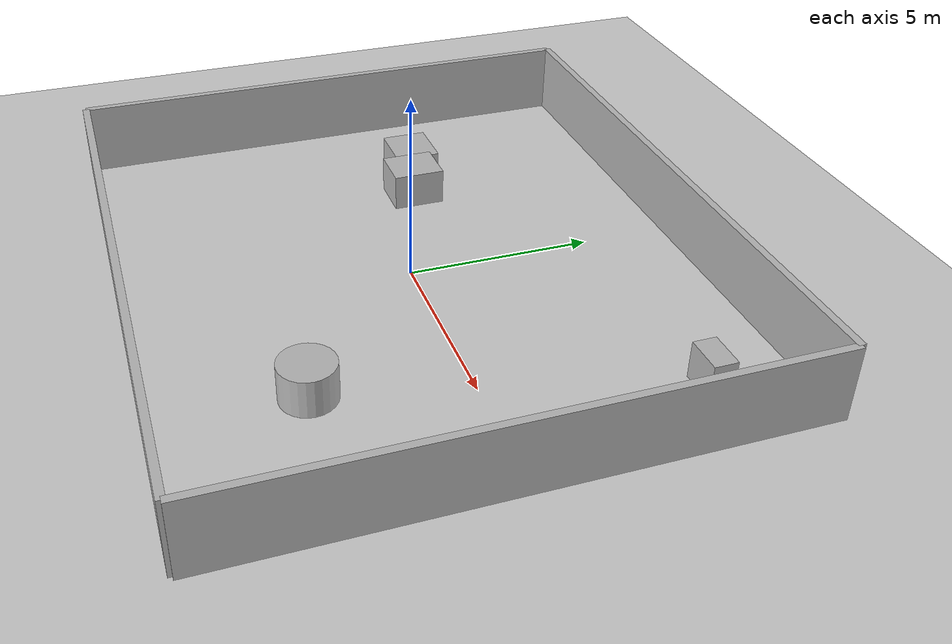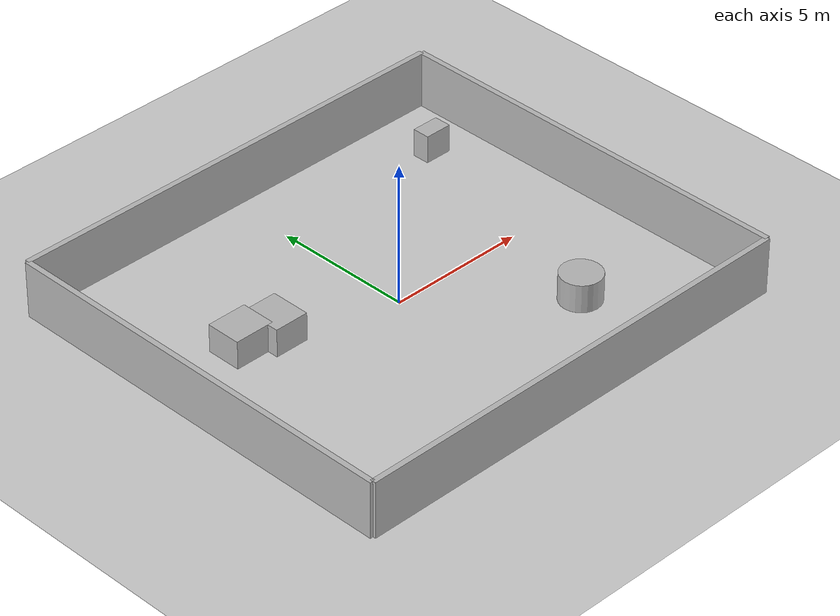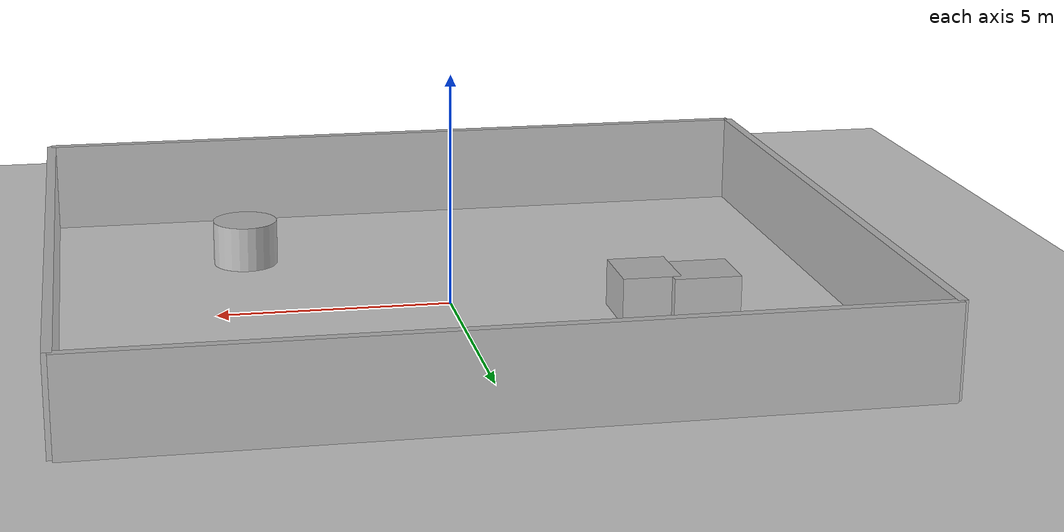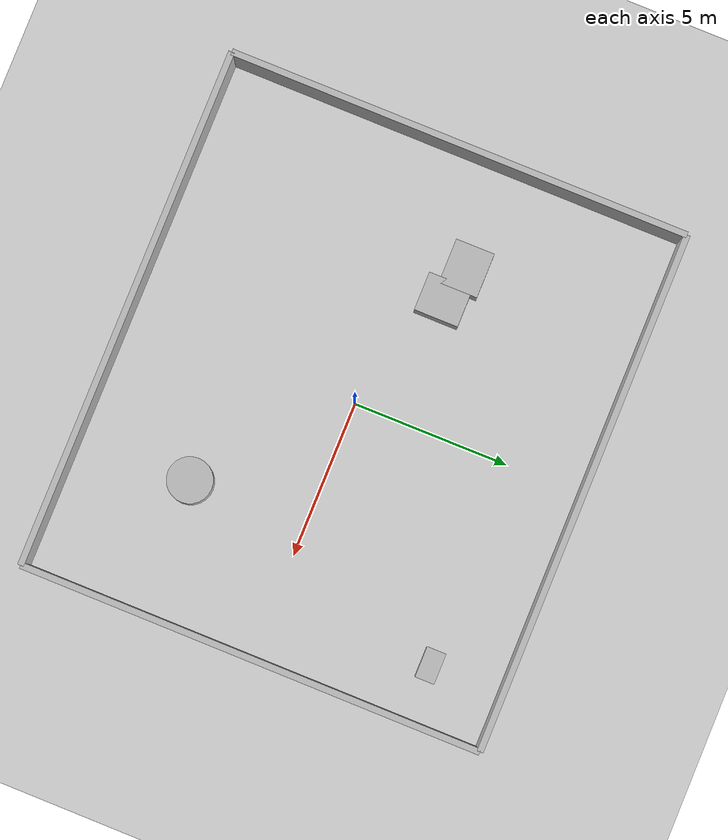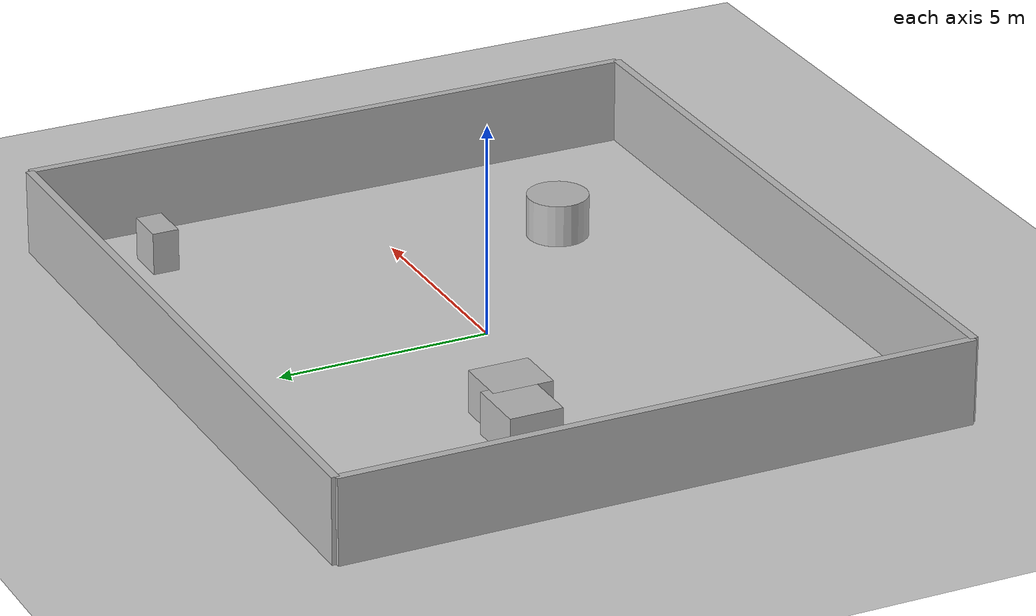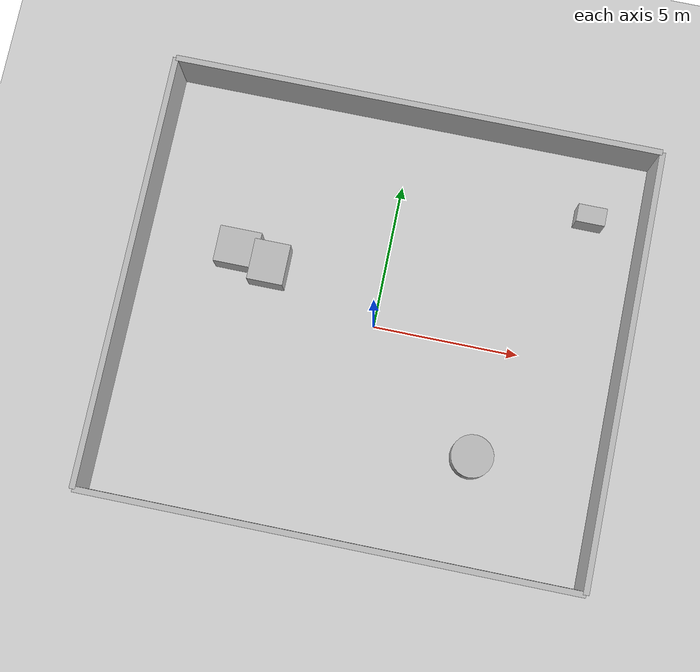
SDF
<?xml version="1.0"?>
<sdf version="1.6">
  <world name="env_96">

    <include><uri>model://ground_plane</uri></include>
    <include><uri>model://sun</uri></include>

    <!-- WALLS -->
    <model name="wall_north"><static>true</static><pose>0 7.417936419375538 1 0 0 0</pose>
      <link name="link"><collision name="collision">
        <geometry><box><size>16.750314968050283 0.2 2</size></box></geometry>
      </collision><visual name="visual">
        <geometry><box><size>16.750314968050283 0.2 2</size></box></geometry>
      </visual></link>
    </model>

    <model name="wall_south"><static>true</static><pose>0 -7.417936419375538 1 0 0 0</pose>
      <link name="link"><collision name="collision">
        <geometry><box><size>16.750314968050283 0.2 2</size></box></geometry>
      </collision><visual name="visual">
        <geometry><box><size>16.750314968050283 0.2 2</size></box></geometry>
      </visual></link>
    </model>

    <model name="wall_east"><static>true</static><pose>8.375157484025141 0 1 0 0 1.57</pose>
      <link name="link"><collision name="collision">
        <geometry><box><size>14.835872838751076 0.2 2</size></box></geometry>
      </collision><visual name="visual">
        <geometry><box><size>14.835872838751076 0.2 2</size></box></geometry>
      </visual></link>
    </model>

    <model name="wall_west"><static>true</static><pose>-8.375157484025141 0 1 0 0 1.57</pose>
      <link name="link"><collision name="collision">
        <geometry><box><size>14.835872838751076 0.2 2</size></box></geometry>
      </collision><visual name="visual">
        <geometry><box><size>14.835872838751076 0.2 2</size></box></geometry>
      </visual></link>
    </model>

    <!-- SENSOR -->

    <model name="lidar_sensor">
      <static>true</static>
      <pose>-1.4258761050069904 1.924871186077258 0.4 0 0 0</pose>
      <link name="link">
        <sensor name="lidar" type="ray">
          <pose>0 0 0 0 0 0</pose>
          <visualize>true</visualize>
          <always_on>true</always_on>
          <update_rate>10</update_rate>
          <ray>
            <scan><horizontal>
              <samples>90</samples>
              <resolution>1</resolution>
              <min_angle>-3.14159</min_angle>
              <max_angle>3.14159</max_angle>
            </horizontal></scan>
            <range><min>0.15</min><max>20.0</max><resolution>0.01</resolution></range>
          </ray>
          <plugin name="lidar_plugin" filename="liblidar_plugin.so"/>
        </sensor>
      </link>
    </model>

    <!-- OBSTACLES -->

    <model name="obstacle_0">
      <static>true</static>
      <pose>4.081160669276597 -3.747538302113972 0.5 0 0 0</pose>
      <link name="link">
        <collision name="collision">
          <geometry><cylinder><radius>0.72</radius><length>1.0</length></cylinder></geometry>
        </collision>
        <visual name="visual">
          <geometry><cylinder><radius>0.72</radius><length>1.0</length></cylinder></geometry>
        </visual>
      </link>
    </model>

    <model name="obstacle_1">
      <static>true</static>
      <pose>-3.9047064123974415 1.3200885810279175 0.5 0 0 0</pose>
      <link name="link">
        <collision name="collision">
          <geometry><box><size>1.24 1.42 1.0</size></box></geometry>
        </collision>
        <visual name="visual">
          <geometry><box><size>1.24 1.42 1.0</size></box></geometry>
        </visual>
      </link>
    </model>

    <model name="obstacle_2">
      <static>true</static>
      <pose>-5.049520553879443 1.6183091122054094 0.5 0 0 0</pose>
      <link name="link">
        <collision name="collision">
          <geometry><box><size>1.44 1.25 1.0</size></box></geometry>
        </collision>
        <visual name="visual">
          <geometry><box><size>1.44 1.25 1.0</size></box></geometry>
        </visual>
      </link>
    </model>

    <model name="obstacle_3">
      <static>true</static>
      <pose>6.53544149809343 5.109077389850604 0.5 0 0 0</pose>
      <link name="link">
        <collision name="collision">
          <geometry><box><size>0.99 0.62 1.0</size></box></geometry>
        </collision>
        <visual name="visual">
          <geometry><box><size>0.99 0.62 1.0</size></box></geometry>
        </visual>
      </link>
    </model>

  </world>
</sdf>
